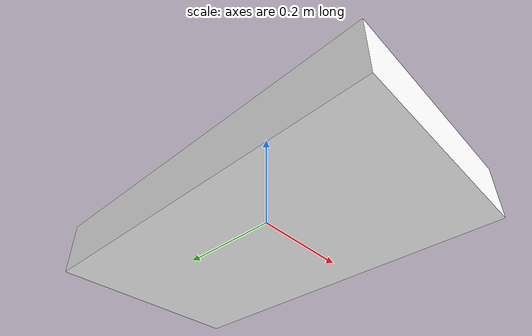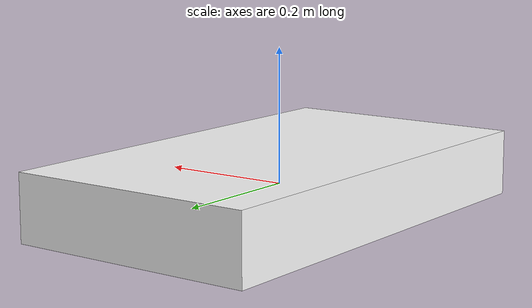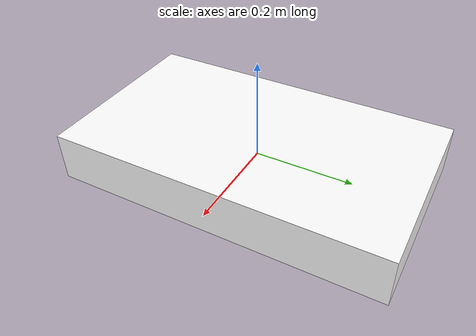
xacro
<?xml version="1.0"?>
<robot xmlns:xacro="http://ros.org/wiki/xacro" name="urdf_test" >

    <!-- COLOR -->
    <material name="white">
        <color rgba="1 1 1 1" />
    </material>

    <!-- BASE -->
    <link name="base_link">
    </link>

    <!-- BODY LINK -->
    <joint name="body_joint" type="fixed">
        <parent link="base_link"/>
        <child link="body"/>
    </joint>

    <link name="body">
        <visual>
            <geometry>
                <box size="0.38 0.67 0.1"/>
            </geometry>
            <material name="white"/>
        </visual>
    </link>

</robot>
